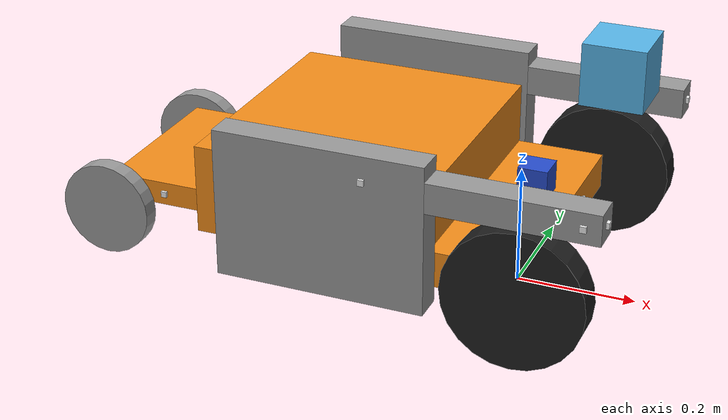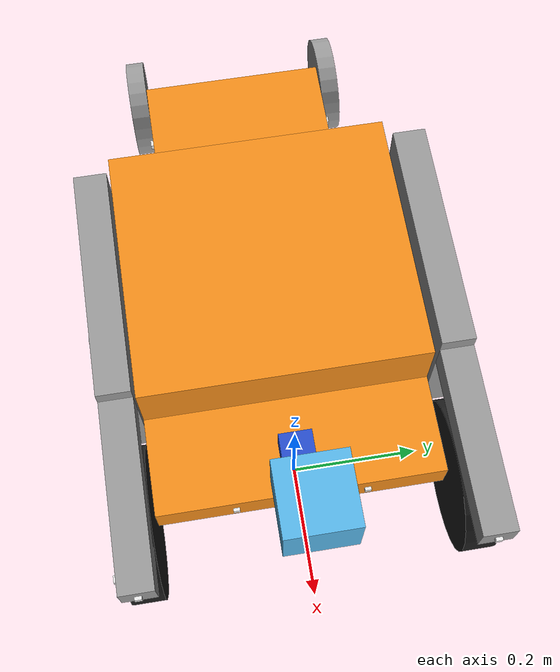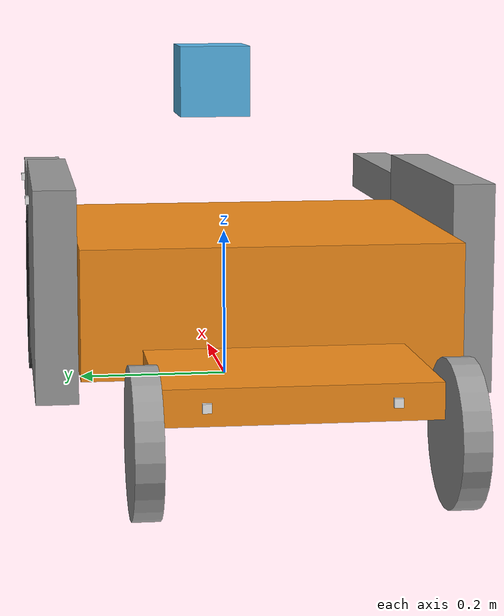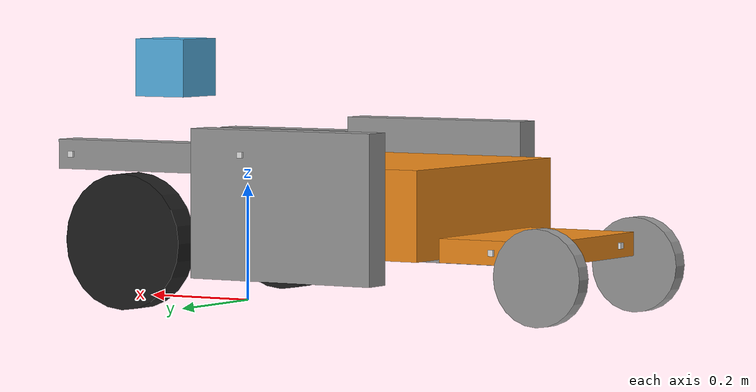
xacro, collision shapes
<?xml version="1.0"?>

<robot name="mybot" xmlns:xacro="http://www.ros.org/wiki/xacro">

  <xacro:property name="PI" value="3.1415926535897931"/>

  <xacro:property name="frontChassisHeight" value="0.06"/>
  <xacro:property name="frontChassisLength" value="0.15"/>
  <xacro:property name="frontChassisWidth" value="0.44"/>
  <xacro:property name="frontChassisMass" value="10"/>

  <xacro:property name="midChassisHeight" value="0.15"/>
  <xacro:property name="midChassisLength" value="0.4"/>
  <xacro:property name="midChassisWidth" value="0.44"/>
  <xacro:property name="midChassisMass" value="30"/>

  <xacro:property name="rearChassisHeight" value="0.04"/>
  <xacro:property name="rearChassisLength" value="0.2"/>
  <xacro:property name="rearChassisWidth" value="0.3"/>
  <xacro:property name="rearChassisMass" value="5"/>

  <xacro:property name="wheelHoldHeight" value="0.25"/>
  <xacro:property name="wheelHoldLength" value="0.35"/>
  <xacro:property name="wheelHoldWidth" value="0.05"/>
  <xacro:property name="wheelHoldMass" value="5"/>

  <xacro:property name="wheelCoverHeight" value="0.05"/>
  <xacro:property name="wheelCoverLength" value="0.27"/>
  <xacro:property name="wheelCoverWidth" value="0.05"/>
  <xacro:property name="wheelCoverMass" value="1"/>

  <xacro:property name="casterRadius" value="0.08"/>
  <xacro:property name="casterMass" value="5"/>

  <xacro:property name="wheelWidth" value="0.05"/>
  <xacro:property name="wheelRadius" value="0.115"/>
  <xacro:property name="wheelPos" value="0"/>
  <xacro:property name="wheelMass" value="5"/>

  <xacro:property name="casterWheelWidth" value="0.03"/>
  <xacro:property name="casterWheelRadius" value="0.08"/>
  <xacro:property name="casterWheelPos" value="0"/>
  <xacro:property name="casterWheelMass" value="3"/>

  <xacro:property name="sonar_min_range" value="0.01"/>
  <xacro:property name="sonar_max_range" value="3.00"/>

  <xacro:property name="cameraSize" value="0.05"/>
  <xacro:property name="cameraMass" value="0.1"/>

  <xacro:include filename="$(find wheelchair_description)/urdf/mybot.gazebo" />
  <xacro:include filename="$(find wheelchair_description)/urdf/materials.xacro" />
  <xacro:include filename="$(find wheelchair_description)/urdf/macros.xacro" />

  <link name="footprint" />

  <joint name="base_joint" type="fixed">
    <parent link="footprint"/>
    <child link="frontChassis"/>
  </joint>

  <link name="frontChassis">
    <collision>
      <origin xyz="0 0 ${wheelRadius}" rpy="0 0 0"/>
      <geometry>
	<box size="${frontChassisLength} ${frontChassisWidth} ${frontChassisHeight}"/>
      </geometry>
    </collision>

    <visual>
      <origin xyz="0 0 ${wheelRadius}" rpy="0 0 0"/>
      <geometry>
	<box size="${frontChassisLength} ${frontChassisWidth} ${frontChassisHeight}"/>
      </geometry>
      <material name="Orange"/>
    </visual>

    <inertial>
      <origin xyz="0 0 ${wheelRadius}" rpy="0 0 0"/>
      <mass value="${frontChassisMass}"/>
      <box_inertia m="${frontChassisMass}" x="${frontChassisLength}" y="${frontChassisWidth}" z="${frontChassisHeight}"/>
    </inertial>
  </link>

  <joint name="frontmid" type="fixed">
  	<origin xyz="${-(frontChassisLength+midChassisLength)/2} 0 ${frontChassisHeight}" rpy="0 0 0"/>
    <parent link="frontChassis"/>
    <child link="midChassis"/>
  </joint>

 <link name="midChassis">
    <collision>
      <origin xyz="0 0 ${wheelRadius}" rpy="0 0 0"/>
      <geometry>
	<box size="${midChassisLength} ${midChassisWidth} ${midChassisHeight}"/>
      </geometry>
    </collision>

    <visual>
      <origin xyz="0 0 ${wheelRadius}" rpy="0 0 0"/>
      <geometry>
	<box size="${midChassisLength} ${midChassisWidth} ${midChassisHeight}"/>
      </geometry>
      <material name="Orange"/>
    </visual>

    <inertial>
      <origin xyz="0 0 ${wheelRadius}" rpy="0 0 0"/>
      <mass value="${midChassisMass}"/>
      <box_inertia m="${midChassisMass}" x="${midChassisLength}" y="${midChassisWidth}" z="${midChassisHeight}"/>
    </inertial>

 </link>

  <joint name="midrear" type="fixed">
  	<origin xyz="${-(rearChassisLength+midChassisLength)/2} 0 ${-frontChassisHeight}" rpy="0 0 0"/>
    <parent link="midChassis"/>
    <child link="rearChassis"/>
  </joint>

 <link name="rearChassis">
    <collision>
      <origin xyz="0 0 ${wheelRadius}" rpy="0 0 0"/>
      <geometry>
	<box size="${rearChassisLength} ${rearChassisWidth} ${rearChassisHeight}"/>
      </geometry>
    </collision>

    <visual>
      <origin xyz="0 0 ${wheelRadius}" rpy="0 0 0"/>
      <geometry>
	<box size="${rearChassisLength} ${rearChassisWidth} ${rearChassisHeight}"/>
      </geometry>
      <material name="Orange"/>
    </visual>

    <inertial>
      <origin xyz="0 0 ${wheelRadius}" rpy="0 0 0"/>
      <mass value="${rearChassisMass}"/>
      <box_inertia m="${rearChassisMass}" x="${rearChassisLength}" y="${rearChassisWidth}" z="${rearChassisHeight}"/>
    </inertial>

 </link>

  <wheel lr="left" tY="-1"/>
  <wheel lr="right" tY="1"/>

  <casterWheel lr="left" tY="-1"/>
  <casterWheel lr="right" tY="1"/>

  <wheelHold lr="left" tY="-1"/>
  <wheelHold lr="right" tY="1"/>

  <wheelCover lr="left" tY="-1"/>
  <wheelCover lr="right" tY="1"/>

  <sonar sonarNumber="1" mountingPart="left_wheelCover" x="${wheelCoverLength/2}" y="0" z="0" roll="0" pitch="0" yaw="0"/>

  <sonar sonarNumber="2" mountingPart="right_wheelCover" x="${wheelCoverLength/2}" y="0" z="0" roll="0" pitch="0" yaw="0"/>

  <sonar sonarNumber="3" mountingPart="frontChassis" x="${frontChassisLength/2}" y="0.1" z="${wheelRadius}" roll="0" pitch="0" yaw="0"/>

  <sonar sonarNumber="4" mountingPart="frontChassis" x="${frontChassisLength/2}" y="-0.1" z="${wheelRadius}" roll="0" pitch="0" yaw="0"/>

  <sonar sonarNumber="5" mountingPart="right_wheelCover" x="${wheelCoverLength*2/5}" y="${wheelCoverWidth/2}" z="0" roll="0" pitch="0" yaw="${PI/2}"/>

  <sonar sonarNumber="6" mountingPart="right_wheelHold" x="${frontChassisLength/2}" y="${wheelHoldWidth/2}" z="${wheelHoldHeight/3}" roll="0" pitch="0" yaw="${PI/2}"/>

  <sonar sonarNumber="7" mountingPart="rearChassis" x="0" y="${rearChassisWidth/2}" z="${wheelRadius}" roll="0" pitch="0" yaw="${PI/2}"/>

  <sonar sonarNumber="8" mountingPart="left_wheelCover" x="${wheelCoverLength*2/5}" y="${-wheelCoverWidth/2}" z="0" roll="0" pitch="0" yaw="${-PI/2}"/>

  <sonar sonarNumber="9" mountingPart="left_wheelHold" x="${frontChassisLength/2}" y="${-wheelHoldWidth/2}" z="${wheelHoldHeight/3}" roll="0" pitch="0" yaw="${-PI/2}"/>

  <sonar sonarNumber="10" mountingPart="rearChassis" x="0" y="${-rearChassisWidth/2}" z="${wheelRadius}" roll="0" pitch="0" yaw="${-PI/2}"/>

  <sonar sonarNumber="11" mountingPart="rearChassis" x="${-rearChassisLength/2}" y="${rearChassisWidth/3}" z="${wheelRadius}" roll="0" pitch="0" yaw="${PI}"/>

  <sonar sonarNumber="12" mountingPart="rearChassis" x="${-rearChassisLength/2}" y="${-rearChassisWidth/3}" z="${wheelRadius}" roll="0" pitch="0" yaw="${PI}"/>

 <joint name="camera_joint" type="fixed">
    <origin xyz="${-cameraSize+frontChassisLength/2} 0 ${cameraSize+wheelRadius+cameraSize/2}" rpy="0 0 0"/>
    <parent link="frontChassis"/>
    <child link="camera"/>
  </joint>

  <link name="camera">
    <collision>
      <origin xyz="0 0 0" rpy="0 0 0"/>
      <geometry>
	<box size="${cameraSize} ${cameraSize} ${cameraSize}"/>
      </geometry>
    </collision>

    <visual>
      <origin xyz="0 0 0" rpy="0 0 0"/>
      <geometry>
	<box size="${cameraSize} ${cameraSize} ${cameraSize}"/>
      </geometry>
      <material name="blue"/>
    </visual>

    <inertial>
      <mass value="${cameraMass}" />
      <origin xyz="0 0 0" rpy="0 0 0"/>
      <box_inertia m="${cameraMass}" x="${cameraSize}" y="${cameraSize}" z="${cameraSize}" />
    </inertial>
  </link>

<!-- Hokuyo Laser -->
  <joint name="hokuyo_joint" type="fixed">
    <axis xyz="0 1 0" />
    <origin xyz=".15 0 .4" rpy="0 0 0"/>
    <parent link="frontChassis"/>
    <child link="hokuyo"/>
  </joint>

  <link name="hokuyo">
    <collision>
      <origin xyz="0 0 0" rpy="0 0 0"/>
      <geometry>
    <box size="0.1 0.1 0.1"/>
      </geometry>
    </collision>

    <visual>
      <origin xyz="0 0 0" rpy="0 0 0"/>
      <geometry>
        <mesh filename="package://wheelchair_description/meshes/hokuyo.dae"/>
      </geometry>
    </visual>

    <inertial>
      <mass value="1e-5" />
      <origin xyz="0 0 0" rpy="0 0 0"/>
      <inertia ixx="1e-6" ixy="0" ixz="0" iyy="1e-6" iyz="0" izz="1e-6" />
    </inertial>
  </link>

<!-- IMU Laser -->
  <joint name="imu_joint" type="fixed">
    <origin xyz="0 0 0" rpy="0 0 0"/>
    <parent link="midChassis"/>
    <child link="imu"/>
  </joint>

  <link name="imu">
    <collision>
      <origin xyz="0 0 ${wheelRadius}" rpy="0 0 0"/>
      <geometry>
    <box size="0.01 0.01 0.01"/>
      </geometry>
    </collision>

    <visual>
      <origin xyz="0 0 ${wheelRadius}" rpy="0 0 0"/>
      <geometry>
         <box size="0.01 0.01 0.01"/>
      </geometry>
    </visual>

    <inertial>
      <mass value="1e-5" />
      <origin xyz="0 0 ${wheelRadius}" rpy="0 0 0"/>
      <box_inertia m="1e-5" x="0.01" y="0.01" z="0.01"/>
    </inertial>
  </link>

</robot>

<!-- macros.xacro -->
<robot>
     <macro name="cylinder_inertia" params="m r h">
        <inertia  ixx="${m*(3*r*r+h*h)/12}" ixy = "0" ixz = "0"
                  iyy="${m*(3*r*r+h*h)/12}" iyz = "0"
                  izz="${m*r*r/2}" />
      </macro>

      <macro name="box_inertia" params="m x y z">
        <inertia  ixx="${m*(y*y+z*z)/12}" ixy = "0" ixz = "0"
                  iyy="${m*(x*x+z*z)/12}" iyz = "0"
                  izz="${m*(x*x+z*z)/12}" />
      </macro>

      <macro name="sphere_inertia" params="m r">
        <inertia  ixx="${2*m*r*r/5}" ixy = "0" ixz = "0"
                  iyy="${2*m*r*r/5}" iyz = "0"
                  izz="${2*m*r*r/5}" />
      </macro>

     <macro name="wheel" params="lr tY">

       <link name="${lr}_wheel">
        <collision>
          <origin xyz="0 0 0" rpy="0 ${PI/2} ${PI/2}" />
          <geometry>
           <cylinder length="${wheelWidth}" radius="${wheelRadius}"/>
          </geometry>
        </collision>

        <visual>
          <origin xyz="0 0 0" rpy="0 ${PI/2} ${PI/2}" />
          <geometry>
           <cylinder length="${wheelWidth}" radius="${wheelRadius}"/>
          </geometry>
          <material name="black"/>
        </visual>

        <inertial>
          <origin xyz="0 0 0" rpy="0 ${PI/2} ${PI/2}" />
          <mass value="${wheelMass}"/>
          <cylinder_inertia m="${wheelMass}" r="${wheelRadius}" h="${wheelWidth}"/>
        </inertial>
       </link>

        <gazebo reference="${lr}_wheel">
          <material>Gazebo/Black</material>
        </gazebo>

       <joint name="${lr}_wheel_hinge" type="continuous">
          <parent link="frontChassis"/>
          <child link="${lr}_wheel"/>
          <origin xyz="${-wheelPos+frontChassisLength/2} ${tY*wheelWidth/2+tY*frontChassisWidth/2} ${wheelRadius}" rpy="0 0 0" />
          <axis xyz="0 1 0" rpy="0 0 0" />
          <limit effort="100" velocity="100"/>
          <joint_properties damping="0.0" friction="0.0"/>
        </joint>

      <transmission name="${lr}_trans">
        <type>transmission_interface/SimpleTransmission</type>
        <joint name="${lr}_wheel_hinge">
        <hardwareInterface>EffortJointInterface</hardwareInterface>
        </joint>
        <actuator name="${lr}Motor">
          <hardwareInterface>EffortJointInterface</hardwareInterface>
          <mechanicalReduction>10</mechanicalReduction>
        </actuator>
      </transmission>

     </macro>

      <macro name="casterWheel" params="lr tY">

       <link name="${lr}_casterWheel">
        <collision>
          <origin xyz="0 0 0" rpy="0 ${PI/2} ${PI/2}" />
          <geometry>
           <cylinder length="${casterWheelWidth}" radius="${casterWheelRadius}"/>
          </geometry>
        </collision>

        <visual>
          <origin xyz="0 0 0" rpy="0 ${PI/2} ${PI/2}" />
          <geometry>
           <cylinder length="${casterWheelWidth}" radius="${casterWheelRadius}"/>
          </geometry>
          <material name="grey"/>
        </visual>

        <inertial>
          <origin xyz="0 0 0" rpy="0 ${PI/2} ${PI/2}" />
          <mass value="${casterWheelMass}"/>
          <cylinder_inertia m="${casterWheelMass}" r="${casterWheelRadius}" h="${casterWheelWidth}"/>
        </inertial>
       </link>

        <gazebo reference="${lr}_casterWheel">
          <material>Gazebo/Grey</material>
        </gazebo>

       <joint name="${lr}_casterWheel_hinge" type="continuous">
          <parent link="rearChassis"/>
          <child link="${lr}_casterWheel"/>
          <origin xyz="${casterWheelPos-rearChassisLength/2} ${tY*casterWheelWidth/2+tY*rearChassisWidth/2} ${casterWheelRadius}" rpy="0 0 0" />
          <axis xyz="0 1 0" rpy="0 0 0" />
          <limit effort="100" velocity="100"/>
          <joint_properties damping="0.0" friction="0.0"/>
        </joint>

    </macro>

     <macro name="wheelHold" params="lr tY">

       <link name="${lr}_wheelHold">
        <collision>
          <origin xyz="0 0 0" rpy="0 0 0" />
          <geometry>
           <box size="${wheelHoldLength} ${wheelHoldWidth} ${wheelHoldHeight}"/>
          </geometry>
        </collision>

        <visual>
          <origin xyz="0 0 0" rpy="0 0 0" />
          <geometry>
           <box size="${wheelHoldLength} ${wheelHoldWidth} ${wheelHoldHeight}"/>
          </geometry>
          <material name="grey"/>
        </visual>

        <inertial>
          <origin xyz="0 0 0" rpy="0 0 0" />
          <mass value="${wheelHoldMass}"/>
          <box_inertia m="${wheelHoldMass}" x="${wheelHoldLength}" y="${wheelHoldWidth}" z="${wheelHoldHeight}"/>
        </inertial>
       </link>

        <gazebo reference="${lr}_wheelHold">
          <material>Gazebo/Orange</material>
        </gazebo>

       <joint name="${lr}_wheelHold_connection" type="fixed">
          <parent link="midChassis"/>
          <child link="${lr}_wheelHold"/>
          <origin xyz="${wheelHoldLength/10} ${tY*wheelHoldWidth/2+tY*midChassisWidth/2} ${wheelHoldHeight/2}" rpy="0 0 0" />
        </joint>

    </macro>

    <macro name="wheelCover" params="lr tY">

       <link name="${lr}_wheelCover">
        <collision>
          <origin xyz="0 0 0" rpy="0 0 0" />
          <geometry>
           <box size="${wheelCoverLength} ${wheelCoverWidth} ${wheelCoverHeight}"/>
          </geometry>
        </collision>

        <visual>
          <origin xyz="0 0 0" rpy="0 0 0" />
          <geometry>
           <box size="${wheelCoverLength} ${wheelCoverWidth} ${wheelCoverHeight}"/>
          </geometry>
          <material name="grey"/>
        </visual>

        <inertial>
          <origin xyz="0 0 0" rpy="0 0 0" />
          <mass value="${wheelCoverMass}"/>
          <box_inertia m="${wheelCoverMass}" x="${wheelCoverLength}" y="${wheelCoverWidth}" z="${wheelCoverHeight}"/>
        </inertial>
       </link>

        <gazebo reference="${lr}_wheelCover">
          <material>Gazebo/Orange</material>
        </gazebo>

       <joint name="${lr}_wheelCover_connection" type="fixed">
          <parent link="${lr}_wheelHold"/>
          <child link="${lr}_wheelCover"/>
          <origin xyz="${(wheelHoldLength+wheelCoverLength)/2} 0 ${wheelHoldHeight/2-wheelCoverHeight}" rpy="0 0 0" />
        </joint>

    </macro>

    <macro name="sonar" params="sonarNumber mountingPart x y z roll pitch yaw">
      <link name="sonar_${sonarNumber}">
      <inertial>
        <mass value="0.001" />
        <origin xyz="0 0 0" rpy="0 0 0" />
        <inertia ixx="0.000000017" ixy="0" ixz="0" iyy="0.000000017" iyz="0" izz="0.000000017" />
      </inertial>
      <visual>
        <origin xyz="0 0 0" rpy="0 0 0" />
        <geometry>
          <mesh filename="package://wheelchair_description/meshes/max_sonar_ez4.dae"/>
        </geometry>
      </visual>
      <collision>
        <origin xyz="0 0 0" rpy="0 0 0" />
        <geometry>
          <box size="0.01 0.01 0.01" />
        </geometry>
      </collision>
      </link>

      <joint name="sonarMounting_${sonarNumber}" type="fixed">
          <parent link="${mountingPart}"/>
          <child link="sonar_${sonarNumber}"/>
          <origin xyz="${x} ${y} ${z}" rpy="${roll} ${pitch} ${yaw}" />
      </joint>

    <gazebo reference="sonar_${sonarNumber}">
  <material>Gazebo/White</material>
  <sensor name="sonar${sonarNumber}" type="ray">
        <always_on>true</always_on>
        <update_rate>30</update_rate>
        <pose>0 0 0 ${roll} ${PI/2+pitch} ${yaw}</pose>
        <visualize>true</visualize>
        <ray>
          <scan>
            <horizontal>
              <samples>1</samples>
              <resolution>1</resolution>
              <min_angle>-${PI/360/2}</min_angle>
              <max_angle> ${PI/360/2}</max_angle>
            </horizontal>
            <vertical>
              <samples>1</samples>
              <resolution>1</resolution>
              <min_angle>-${PI/360/2}</min_angle>
              <max_angle> ${PI/360/2}</max_angle>
            </vertical>
          </scan>
          <range>
            <min>${sonar_min_range}</min>
            <max>${sonar_max_range}</max>
            <resolution>0.01</resolution>
          </range>
        </ray>
        <plugin name="gazebo_ros_kinetic_controller" filename="libhector_gazebo_ros_sonar.so">
          <gaussianNoise>0.005</gaussianNoise>
          <topicName>/mybot/sonar${sonarNumber}/scan</topicName>
          <frameId>sonar_${sonarNumber}</frameId>
        </plugin>
 </sensor>
</gazebo>

   </macro>

</robot>
